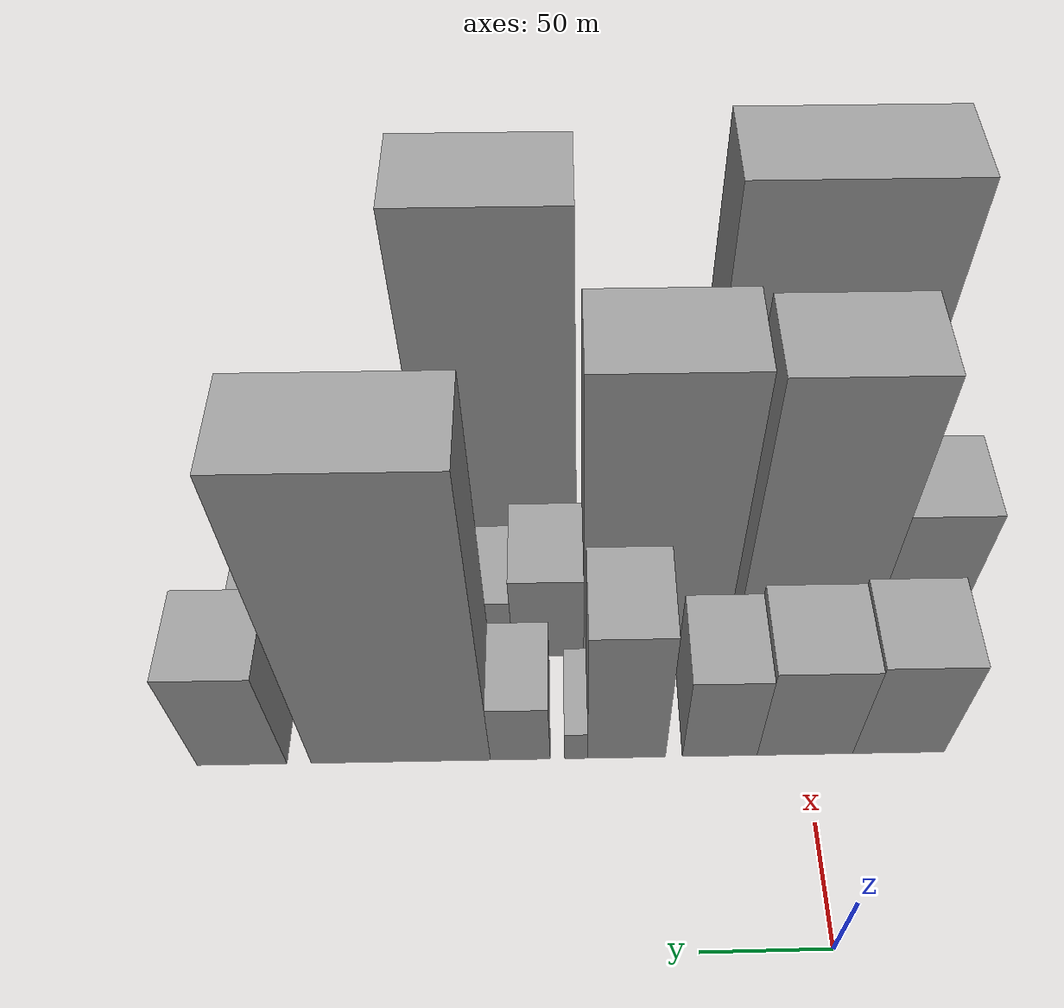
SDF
<sdf version="1.6">
 <world name="default">
  <model name="building_17">
   <static>1</static>
   <pose>100.0000 -38.5526 0 0.000000 0.000000 0.000000</pose>
   <link name="link">
    <pose>0 0 34.50 0 0 0</pose>
    <collision name="collision"><geometry><box><size>40.0000 37.9906 69.0000</size></box></geometry></collision>
    <visual name="visual">
     <cast_shadows>0</cast_shadows>
     <geometry><box><size>40.0000 37.9906 69.0000</size></box></geometry>
     <material>
      <script>
       <uri>model://grey_wall/materials/scripts</uri>
       <uri>model://grey_wall/materials/textures</uri>
       <name>vrc/grey_wall</name>
      </script>
     </material>
    </visual>
   </link>
  </model>
  <model name="building_18">
   <static>1</static>
   <pose>100.0000 0.2296 0 0.000000 0.000000 0.000000</pose>
   <link name="link">
    <pose>0 0 33.00 0 0 0</pose>
    <collision name="collision"><geometry><box><size>40.0000 39.5738 66.0000</size></box></geometry></collision>
    <visual name="visual">
     <cast_shadows>0</cast_shadows>
     <geometry><box><size>40.0000 39.5738 66.0000</size></box></geometry>
     <material>
      <script>
       <uri>model://grey_wall/materials/scripts</uri>
       <uri>model://grey_wall/materials/textures</uri>
       <name>vrc/grey_wall</name>
      </script>
     </material>
    </visual>
   </link>
  </model>
  <model name="building_19">
   <static>1</static>
   <pose>100.0000 35.4518 0 0.000000 0.000000 0.000000</pose>
   <link name="link">
    <pose>0 0 30.00 0 0 0</pose>
    <collision name="collision"><geometry><box><size>40.0000 30.8706 60.0000</size></box></geometry></collision>
    <visual name="visual">
     <cast_shadows>0</cast_shadows>
     <geometry><box><size>40.0000 30.8706 60.0000</size></box></geometry>
     <material>
      <script>
       <uri>model://grey_wall/materials/scripts</uri>
       <uri>model://grey_wall/materials/textures</uri>
       <name>vrc/grey_wall</name>
      </script>
     </material>
    </visual>
   </link>
  </model>
  <model name="building_20">
   <static>1</static>
   <pose>100.0000 73.9305 0 0.000000 0.000000 0.000000</pose>
   <link name="link">
    <pose>0 0 46.50 0 0 0</pose>
    <collision name="collision"><geometry><box><size>40.0000 32.0868 93.0000</size></box></geometry></collision>
    <visual name="visual">
     <cast_shadows>0</cast_shadows>
     <geometry><box><size>40.0000 32.0868 93.0000</size></box></geometry>
     <material>
      <script>
       <uri>model://grey_wall/materials/scripts</uri>
       <uri>model://grey_wall/materials/textures</uri>
       <name>vrc/grey_wall</name>
      </script>
     </material>
    </visual>
   </link>
  </model>
  <model name="building_21">
   <static>1</static>
   <pose>100.0000 94.6951 0 0.000000 0.000000 0.000000</pose>
   <link name="link">
    <pose>0 0 10.50 0 0 0</pose>
    <collision name="collision"><geometry><box><size>40.0000 9.4425 21.0000</size></box></geometry></collision>
    <visual name="visual">
     <cast_shadows>0</cast_shadows>
     <geometry><box><size>40.0000 9.4425 21.0000</size></box></geometry>
     <material>
      <script>
       <uri>model://grey_wall/materials/scripts</uri>
       <uri>model://grey_wall/materials/textures</uri>
       <name>vrc/grey_wall</name>
      </script>
     </material>
    </visual>
   </link>
  </model>
  <model name="building_22">
   <static>1</static>
   <pose>100.0000 117.7082 0 0.000000 0.000000 0.000000</pose>
   <link name="link">
    <pose>0 0 21.00 0 0 0</pose>
    <collision name="collision"><geometry><box><size>40.0000 24.5837 42.0000</size></box></geometry></collision>
    <visual name="visual">
     <cast_shadows>0</cast_shadows>
     <geometry><box><size>40.0000 24.5837 42.0000</size></box></geometry>
     <material>
      <script>
       <uri>model://grey_wall/materials/scripts</uri>
       <uri>model://grey_wall/materials/textures</uri>
       <name>vrc/grey_wall</name>
      </script>
     </material>
    </visual>
   </link>
  </model>
  <model name="building_23">
   <static>1</static>
   <pose>100.0000 166.8119 0 0.000000 0.000000 0.000000</pose>
   <link name="link">
    <pose>0 0 93.00 0 0 0</pose>
    <collision name="collision"><geometry><box><size>40.0000 73.6238 186.0000</size></box></geometry></collision>
    <visual name="visual">
     <cast_shadows>0</cast_shadows>
     <geometry><box><size>40.0000 73.6238 186.0000</size></box></geometry>
     <material>
      <script>
       <uri>model://grey_wall/materials/scripts</uri>
       <uri>model://grey_wall/materials/textures</uri>
       <name>vrc/grey_wall</name>
      </script>
     </material>
    </visual>
   </link>
  </model>
  <model name="building_24">
   <static>1</static>
   <pose>100.0000 231.9970 0 0.000000 0.000000 0.000000</pose>
   <link name="link">
    <pose>0 0 34.50 0 0 0</pose>
    <collision name="collision"><geometry><box><size>40.0000 36.7465 69.0000</size></box></geometry></collision>
    <visual name="visual">
     <cast_shadows>0</cast_shadows>
     <geometry><box><size>40.0000 36.7465 69.0000</size></box></geometry>
     <material>
      <script>
       <uri>model://grey_wall/materials/scripts</uri>
       <uri>model://grey_wall/materials/textures</uri>
       <name>vrc/grey_wall</name>
      </script>
     </material>
    </visual>
   </link>
  </model>
  <model name="building_50">
   <static>1</static>
   <pose>149.0000 -49.4496 0 0.000000 0.000000 0.000000</pose>
   <link name="link">
    <pose>0 0 48.00 0 0 0</pose>
    <collision name="collision"><geometry><box><size>40.0000 35.3208 96.0000</size></box></geometry></collision>
    <visual name="visual">
     <cast_shadows>0</cast_shadows>
     <geometry><box><size>40.0000 35.3208 96.0000</size></box></geometry>
     <material>
      <script>
       <uri>model://grey_wall/materials/scripts</uri>
       <uri>model://grey_wall/materials/textures</uri>
       <name>vrc/grey_wall</name>
      </script>
     </material>
    </visual>
   </link>
  </model>
  <model name="building_51">
   <static>1</static>
   <pose>149.0000 -3.1901 0 0.000000 0.000000 0.000000</pose>
   <link name="link">
    <pose>0 0 85.50 0 0 0</pose>
    <collision name="collision"><geometry><box><size>40.0000 57.1981 171.0000</size></box></geometry></collision>
    <visual name="visual">
     <cast_shadows>0</cast_shadows>
     <geometry><box><size>40.0000 57.1981 171.0000</size></box></geometry>
     <material>
      <script>
       <uri>model://grey_wall/materials/scripts</uri>
       <uri>model://grey_wall/materials/textures</uri>
       <name>vrc/grey_wall</name>
      </script>
     </material>
    </visual>
   </link>
  </model>
  <model name="building_52">
   <static>1</static>
   <pose>149.0000 59.9983 0 0.000000 0.000000 0.000000</pose>
   <link name="link">
    <pose>0 0 87.00 0 0 0</pose>
    <collision name="collision"><geometry><box><size>40.0000 61.1785 174.0000</size></box></geometry></collision>
    <visual name="visual">
     <cast_shadows>0</cast_shadows>
     <geometry><box><size>40.0000 61.1785 174.0000</size></box></geometry>
     <material>
      <script>
       <uri>model://grey_wall/materials/scripts</uri>
       <uri>model://grey_wall/materials/textures</uri>
       <name>vrc/grey_wall</name>
      </script>
     </material>
    </visual>
   </link>
  </model>
  <model name="building_53">
   <static>1</static>
   <pose>149.0000 105.9082 0 0.000000 0.000000 0.000000</pose>
   <link name="link">
    <pose>0 0 28.50 0 0 0</pose>
    <collision name="collision"><geometry><box><size>40.0000 30.6414 57.0000</size></box></geometry></collision>
    <visual name="visual">
     <cast_shadows>0</cast_shadows>
     <geometry><box><size>40.0000 30.6414 57.0000</size></box></geometry>
     <material>
      <script>
       <uri>model://grey_wall/materials/scripts</uri>
       <uri>model://grey_wall/materials/textures</uri>
       <name>vrc/grey_wall</name>
      </script>
     </material>
    </visual>
   </link>
  </model>
  <model name="building_54">
   <static>1</static>
   <pose>149.0000 132.3277 0 0.000000 0.000000 0.000000</pose>
   <link name="link">
    <pose>0 0 21.00 0 0 0</pose>
    <collision name="collision"><geometry><box><size>40.0000 22.1977 42.0000</size></box></geometry></collision>
    <visual name="visual">
     <cast_shadows>0</cast_shadows>
     <geometry><box><size>40.0000 22.1977 42.0000</size></box></geometry>
     <material>
      <script>
       <uri>model://grey_wall/materials/scripts</uri>
       <uri>model://grey_wall/materials/textures</uri>
       <name>vrc/grey_wall</name>
      </script>
     </material>
    </visual>
   </link>
  </model>
  <model name="building_55">
   <static>1</static>
   <pose>149.0000 162.5598 0 0.000000 0.000000 0.000000</pose>
   <link name="link">
    <pose>0 0 34.50 0 0 0</pose>
    <collision name="collision"><geometry><box><size>40.0000 38.2664 69.0000</size></box></geometry></collision>
    <visual name="visual">
     <cast_shadows>0</cast_shadows>
     <geometry><box><size>40.0000 38.2664 69.0000</size></box></geometry>
     <material>
      <script>
       <uri>model://grey_wall/materials/scripts</uri>
       <uri>model://grey_wall/materials/textures</uri>
       <name>vrc/grey_wall</name>
      </script>
     </material>
    </visual>
   </link>
  </model>
  <model name="building_56">
   <static>1</static>
   <pose>149.0000 204.9134 0 0.000000 0.000000 0.000000</pose>
   <link name="link">
    <pose>0 0 33.00 0 0 0</pose>
    <collision name="collision"><geometry><box><size>40.0000 38.4408 66.0000</size></box></geometry></collision>
    <visual name="visual">
     <cast_shadows>0</cast_shadows>
     <geometry><box><size>40.0000 38.4408 66.0000</size></box></geometry>
     <material>
      <script>
       <uri>model://grey_wall/materials/scripts</uri>
       <uri>model://grey_wall/materials/textures</uri>
       <name>vrc/grey_wall</name>
      </script>
     </material>
    </visual>
   </link>
  </model>
  <model name="building_57">
   <static>1</static>
   <pose>149.0000 232.5292 0 0.000000 0.000000 0.000000</pose>
   <link name="link">
    <pose>0 0 16.50 0 0 0</pose>
    <collision name="collision"><geometry><box><size>40.0000 16.7909 33.0000</size></box></geometry></collision>
    <visual name="visual">
     <cast_shadows>0</cast_shadows>
     <geometry><box><size>40.0000 16.7909 33.0000</size></box></geometry>
     <material>
      <script>
       <uri>model://grey_wall/materials/scripts</uri>
       <uri>model://grey_wall/materials/textures</uri>
       <name>vrc/grey_wall</name>
      </script>
     </material>
    </visual>
   </link>
  </model>
  <model name="building_81">
   <static>1</static>
   <pose>198.0000 -2.0686 0 0.000000 0.000000 0.000000</pose>
   <link name="link">
    <pose>0 0 105.00 0 0 0</pose>
    <collision name="collision"><geometry><box><size>40.0000 81.4682 210.0000</size></box></geometry></collision>
    <visual name="visual">
     <cast_shadows>0</cast_shadows>
     <geometry><box><size>40.0000 81.4682 210.0000</size></box></geometry>
     <material>
      <script>
       <uri>model://grey_wall/materials/scripts</uri>
       <uri>model://grey_wall/materials/textures</uri>
       <name>vrc/grey_wall</name>
      </script>
     </material>
    </visual>
   </link>
  </model>
  <model name="building_82">
   <static>1</static>
   <pose>198.0000 49.1803 0 0.000000 0.000000 0.000000</pose>
   <link name="link">
    <pose>0 0 10.50 0 0 0</pose>
    <collision name="collision"><geometry><box><size>40.0000 9.0295 21.0000</size></box></geometry></collision>
    <visual name="visual">
     <cast_shadows>0</cast_shadows>
     <geometry><box><size>40.0000 9.0295 21.0000</size></box></geometry>
     <material>
      <script>
       <uri>model://grey_wall/materials/scripts</uri>
       <uri>model://grey_wall/materials/textures</uri>
       <name>vrc/grey_wall</name>
      </script>
     </material>
    </visual>
   </link>
  </model>
  <model name="building_83">
   <static>1</static>
   <pose>198.0000 71.7832 0 0.000000 0.000000 0.000000</pose>
   <link name="link">
    <pose>0 0 55.50 0 0 0</pose>
    <collision name="collision"><geometry><box><size>40.0000 36.1765 111.0000</size></box></geometry></collision>
    <visual name="visual">
     <cast_shadows>0</cast_shadows>
     <geometry><box><size>40.0000 36.1765 111.0000</size></box></geometry>
     <material>
      <script>
       <uri>model://grey_wall/materials/scripts</uri>
       <uri>model://grey_wall/materials/textures</uri>
       <name>vrc/grey_wall</name>
      </script>
     </material>
    </visual>
   </link>
  </model>
  <model name="building_84">
   <static>1</static>
   <pose>198.0000 125.2555 0 0.000000 0.000000 0.000000</pose>
   <link name="link">
    <pose>0 0 100.50 0 0 0</pose>
    <collision name="collision"><geometry><box><size>40.0000 64.7682 201.0000</size></box></geometry></collision>
    <visual name="visual">
     <cast_shadows>0</cast_shadows>
     <geometry><box><size>40.0000 64.7682 201.0000</size></box></geometry>
     <material>
      <script>
       <uri>model://grey_wall/materials/scripts</uri>
       <uri>model://grey_wall/materials/textures</uri>
       <name>vrc/grey_wall</name>
      </script>
     </material>
    </visual>
   </link>
  </model>
  <model name="building_85">
   <static>1</static>
   <pose>198.0000 168.9163 0 0.000000 0.000000 0.000000</pose>
   <link name="link">
    <pose>0 0 21.00 0 0 0</pose>
    <collision name="collision"><geometry><box><size>40.0000 22.5534 42.0000</size></box></geometry></collision>
    <visual name="visual">
     <cast_shadows>0</cast_shadows>
     <geometry><box><size>40.0000 22.5534 42.0000</size></box></geometry>
     <material>
      <script>
       <uri>model://grey_wall/materials/scripts</uri>
       <uri>model://grey_wall/materials/textures</uri>
       <name>vrc/grey_wall</name>
      </script>
     </material>
    </visual>
   </link>
  </model>
  <model name="building_86">
   <static>1</static>
   <pose>198.0000 197.5334 0 0.000000 0.000000 0.000000</pose>
   <link name="link">
    <pose>0 0 18.00 0 0 0</pose>
    <collision name="collision"><geometry><box><size>40.0000 18.6807 36.0000</size></box></geometry></collision>
    <visual name="visual">
     <cast_shadows>0</cast_shadows>
     <geometry><box><size>40.0000 18.6807 36.0000</size></box></geometry>
     <material>
      <script>
       <uri>model://grey_wall/materials/scripts</uri>
       <uri>model://grey_wall/materials/textures</uri>
       <name>vrc/grey_wall</name>
      </script>
     </material>
    </visual>
   </link>
  </model>
  <model name="building_87">
   <static>1</static>
   <pose>198.0000 211.1979 0 0.000000 0.000000 0.000000</pose>
   <link name="link">
    <pose>0 0 10.50 0 0 0</pose>
    <collision name="collision"><geometry><box><size>40.0000 8.6483 21.0000</size></box></geometry></collision>
    <visual name="visual">
     <cast_shadows>0</cast_shadows>
     <geometry><box><size>40.0000 8.6483 21.0000</size></box></geometry>
     <material>
      <script>
       <uri>model://grey_wall/materials/scripts</uri>
       <uri>model://grey_wall/materials/textures</uri>
       <name>vrc/grey_wall</name>
      </script>
     </material>
    </visual>
   </link>
  </model>
  <model name="building_88">
   <static>1</static>
   <pose>198.0000 230.7799 0 0.000000 0.000000 0.000000</pose>
   <link name="link">
    <pose>0 0 16.50 0 0 0</pose>
    <collision name="collision"><geometry><box><size>40.0000 18.5157 33.0000</size></box></geometry></collision>
    <visual name="visual">
     <cast_shadows>0</cast_shadows>
     <geometry><box><size>40.0000 18.5157 33.0000</size></box></geometry>
     <material>
      <script>
       <uri>model://grey_wall/materials/scripts</uri>
       <uri>model://grey_wall/materials/textures</uri>
       <name>vrc/grey_wall</name>
      </script>
     </material>
    </visual>
   </link>
  </model>
 </world>
</sdf>
